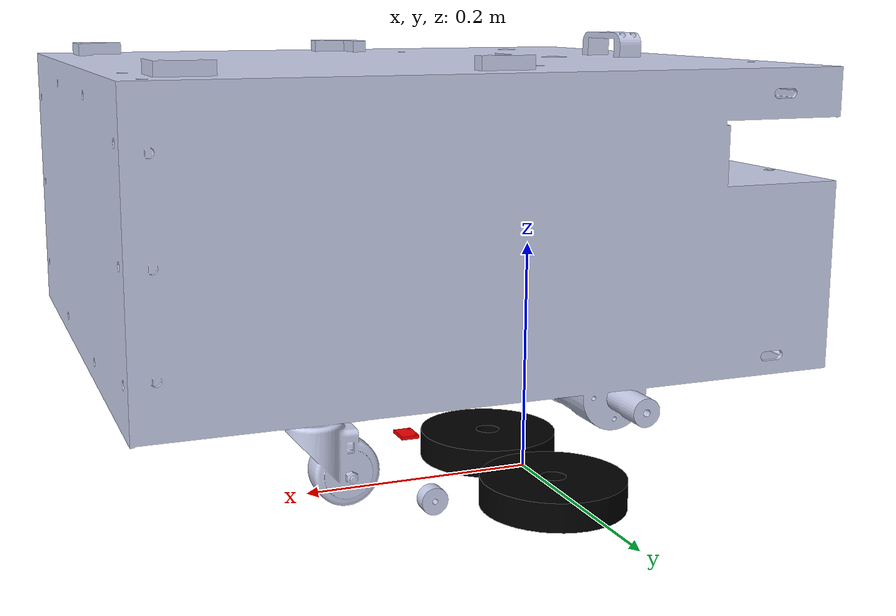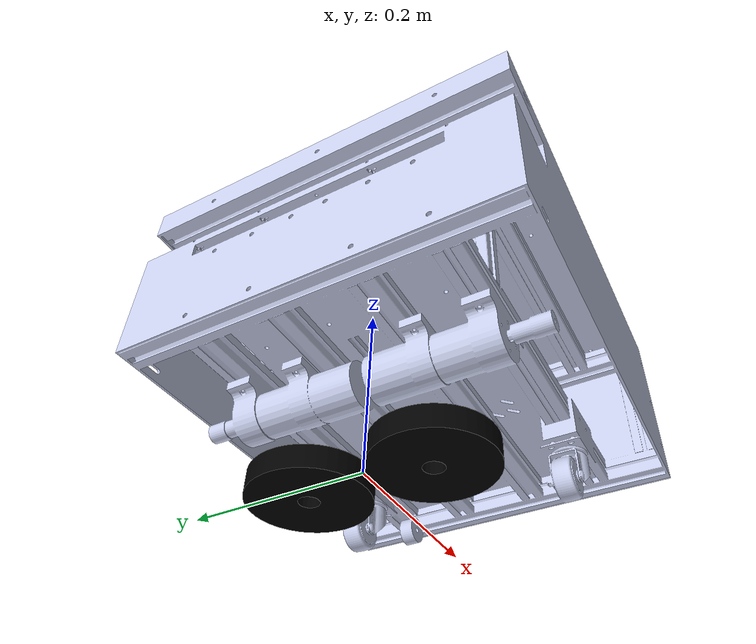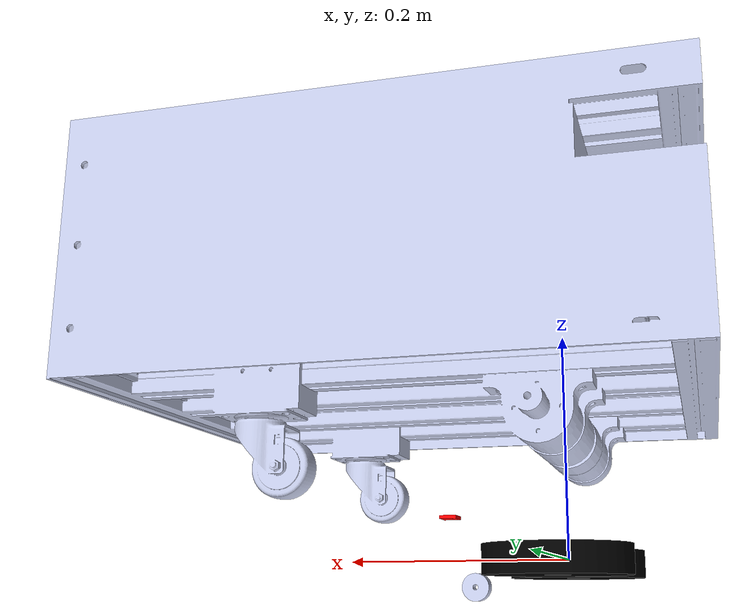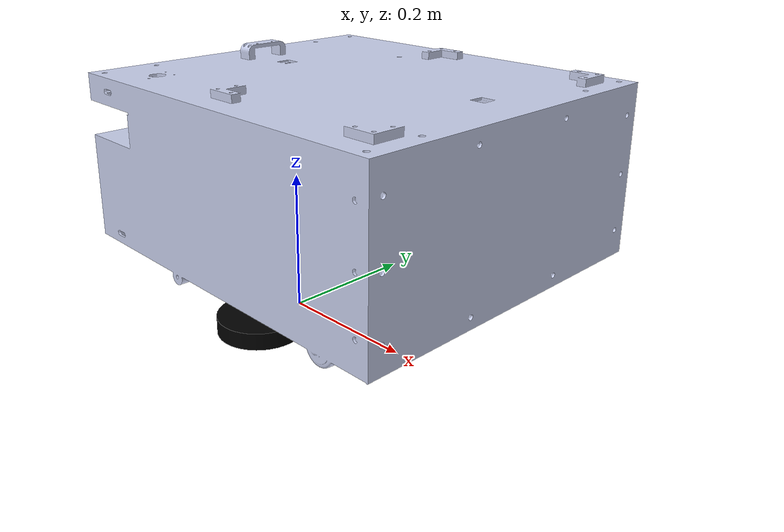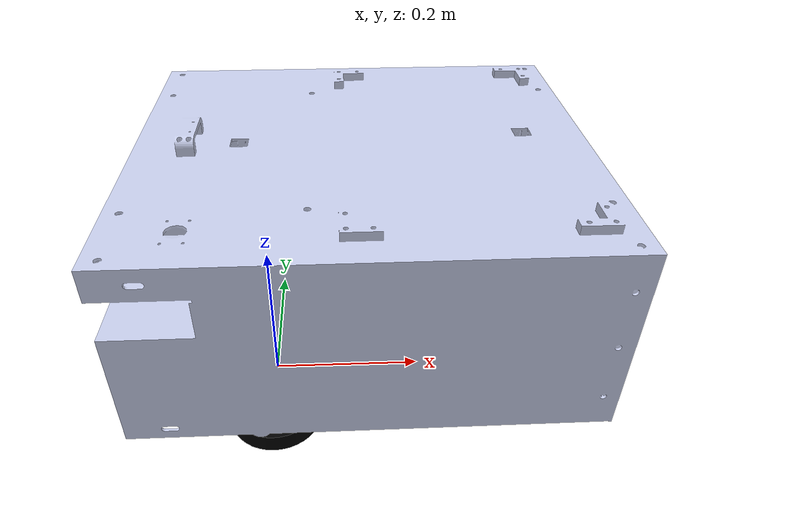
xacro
<?xml version="1.0" encoding="utf-8"?>

<robot name="my_first_robot" xmlns:xacro="http://www.ros.org/wiki/xacro">

  <xacro:include filename="$(find description)/urdf/material.xacro" />
  <xacro:include filename="$(find description)/urdf/robot.gazebo" />

 <link name="base_footprint"/>

  <joint name="base_joint" type="fixed">
    <parent link="base_footprint"/>
    <child link="base_link"/>
    <origin xyz="0.0 0.0 0" rpy="0 0 -1.57"/>
  </joint>

  <link
    name="base_link">
    <inertial>
      <origin
        xyz="0.00604222427993528 0.0937383676015929 -0.0402106239401368"
        rpy="0 0 0" />
      <mass
        value="0.519076841043834" />
      <inertia
        ixx="0.00075109355134614"
        ixy="6.22413563458484E-10"
        ixz="-1.21335085888853E-08"
        iyy="0.00143705806630845"
        iyz="6.53873710779967E-07"
        izz="0.000714530468814509" />
    </inertial>
    <visual>
      <origin
        xyz="0 0 0"
        rpy="0 0 0" />
      <geometry>
        <mesh
          filename="package://description/meshes/base_link.STL" />
      </geometry>
      <material
        name="">
        <color
          rgba="0.792156862745098 0.819607843137255 0.933333333333333 1" />
      </material>
    </visual>
    <collision>
      <origin
        xyz="0 0 0"
        rpy="0 0 0" />
      <geometry>
        <mesh
          filename="package://description/meshes/base_link.STL" />
      </geometry>
    </collision>
  </link>
  <link
    name="imu_base">
    <inertial>
      <origin
        xyz="-0.0002247 -6.9389E-18 -0.0015"
        rpy="0 0 0" />
      <mass
        value="0.000942" />
      <inertia
        ixx="3.4363E-08"
        ixy="-5.1646E-25"
        ixz="-1.1114E-25"
        iyy="1.9247E-08"
        iyz="-6.1352E-24"
        izz="5.2197E-08" />
    </inertial>
    <visual>
      <origin
        xyz="0 0 0"
        rpy="0 0 0" />
      <geometry>
        <mesh
          filename="package://description/meshes/imu_link.STL" />
      </geometry>
      <material
        name="">
        <color
          rgba="1 0 0 1" />
      </material>
    </visual>
    <collision>
      <origin
        xyz="0 0 0"
        rpy="0 0 0" />
      <geometry>
        <mesh
          filename="package://description/meshes/imu_link.STL" />
      </geometry>
    </collision>
  </link>
  <joint
    name="imu_joint"
    type="fixed">
    <origin
      xyz="0.0063942 0.10863 0.040861"
      rpy="0 0 -1.5708" />
    <parent
      link="base_link" />
    <child
      link="imu_base" />
    <axis
      xyz="0 0 0" />
  </joint>
  <link
    name="caster_link">
    <inertial>
      <origin
        xyz="-1.38777878078145E-17 -6.93889390390723E-18 0.00620920157446308"
        rpy="0 0 0" />
      <mass
        value="0.00573786372737865" />
      <inertia
        ixx="3.01346626020544E-07"
        ixy="-3.30872245021211E-24"
        ixz="1.23097932257356E-23"
        iyy="3.01346626020544E-07"
        iyz="-1.4889642918021E-23"
        izz="4.48449911942938E-07" />
    </inertial>
    <visual>
      <origin
        xyz="0 0 0"
        rpy="0 0 0" />
      <geometry>
        <mesh
          filename="package://description/meshes/caster_link.STL" />
      </geometry>
      <material
        name="">
        <color
          rgba="0.792156862745098 0.819607843137255 0.933333333333333 1" />
      </material>
    </visual>
    <collision>
      <origin
        xyz="0 0 0"
        rpy="0 0 0" />
      <geometry>
        <mesh
          filename="package://description/meshes/caster_link.STL" />
      </geometry>
    </collision>
  </link>
  <joint
    name="caster_joint"
    type="fixed">
    <origin
      xyz="0 0.084145 -0.022819"
      rpy="1.5708 -0.16099 1.5708" />
    <parent
      link="base_link" />
    <child
      link="caster_link" />
    <axis
      xyz="0 0 0" />
  </joint>
  <link
    name="lidar_link">
    <inertial>
      <origin
        xyz="-8.6736E-19 1.3878E-17 -0.012944"
        rpy="0 0 0" />
      <mass
        value="0.090366" />
      <inertia
        ixx="2.9262E-05"
        ixy="7.1466E-37"
        ixz="3.7542E-22"
        iyy="2.9262E-05"
        iyz="3.4542E-21"
        izz="4.6984E-05" />
    </inertial>
    <visual>
      <origin
        xyz="0 0 0"
        rpy="0 0 0" />
      <geometry>
        <mesh
          filename="package://description/meshes/lidar_link.STL" />
      </geometry>
      <material
        name="">
        <color
          rgba="0 0 1 1" />
      </material>
    </visual>
    <collision>
      <origin
        xyz="0 0 0"
        rpy="0 0 0" />
      <geometry>
        <mesh
          filename="package://description/meshes/lidar_link.STL" />
      </geometry>
    </collision>
  </link>
  <joint
    name="lidar_joint"
    type="fixed">
    <origin
      xyz="0.0042092 0.080995 0.1932"
      rpy="3.14 -3.14 1.57" />
    <parent
      link="base_link" />
    <child
      link="lidar_link" />
    <axis
      xyz="0 0 0" />
  </joint>
  <link
    name="wheel_R_link">
    <inertial>
      <origin
        xyz="-0.016617 -8.7963E-12 -7.3698E-07"
        rpy="0 0 0" />
      <mass
        value="0.053158" />
      <inertia
        ixx="4.0958E-05"
        ixy="3.054E-15"
        ixz="2.443E-10"
        iyy="2.3293E-05"
        iyz="5.1359E-16"
        izz="2.3293E-05" />
    </inertial>
    <visual>
      <origin
        xyz="0 0 0"
        rpy="0 0 0" />
      <geometry>
        <mesh
          filename="package://description/meshes/wheel_R_link.STL" />
      </geometry>
      <material
        name="">
        <color
          rgba="0 0 0 1" />
      </material>
    </visual>
    <collision>
      <origin
        xyz="0 0 0"
        rpy="0 0 0" />
      <geometry>
        <mesh
          filename="package://description/meshes/wheel_R_link.STL" />
      </geometry>
    </collision>
  </link>
  <joint
    name="wheel_R_joint"
    type="continuous">
    <origin
      xyz="0.073109 0.001672 -0.0015622"
      rpy="1.5708 0 3.1416" />
    <parent
      link="base_link" />
    <child
      link="wheel_R_link" />
    <axis
      xyz="1 0 0" />
  </joint>
  <link
    name="wheel_L_link">
    <inertial>
      <origin
        xyz="0 0 0"
        rpy="0 0 0" />
      <mass
        value="0" />
      <inertia
        ixx="0"
        ixy="0"
        ixz="0"
        iyy="0"
        iyz="0"
        izz="0" />
    </inertial>
    <visual>
      <origin
        xyz="0 0 0"
        rpy="0 0 0" />
      <geometry>
        <mesh
          filename="package://description/meshes/wheel_L_link.STL" />
      </geometry>
      <material
        name="">
        <color
          rgba="0 0 0 1" />
      </material>
    </visual>
    <collision>
      <origin
        xyz="0 0 0"
        rpy="0 0 0" />
      <geometry>
        <mesh
          filename="package://description/meshes/wheel_L_link.STL" />
      </geometry>
    </collision>
  </link>
  <joint
    name="wheel_L_joint"
    type="continuous">
    <origin
      xyz="-0.060691 0.001672 -0.0015622"
      rpy="1.5708 0 0" />
    <parent
      link="base_link" />
    <child
      link="wheel_L_link" />
    <axis
      xyz="1 0 0" />
  </joint>
</robot>
